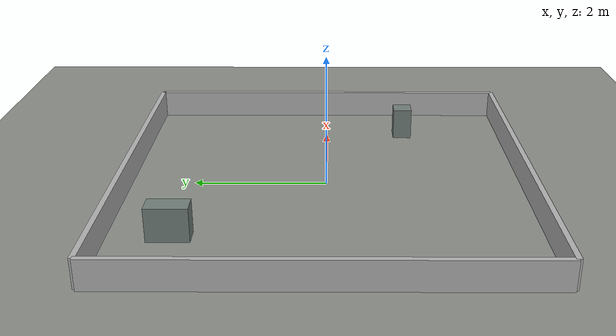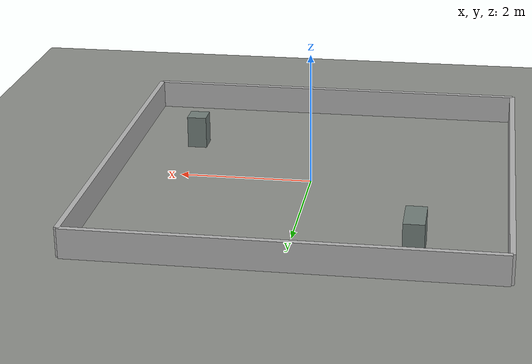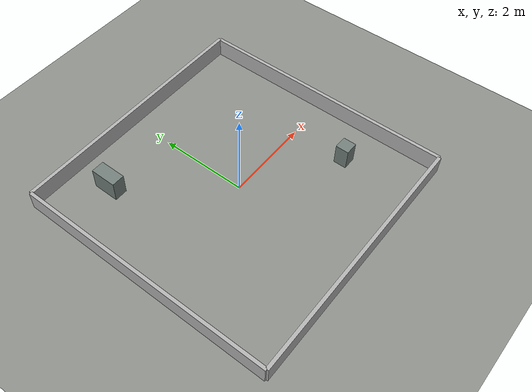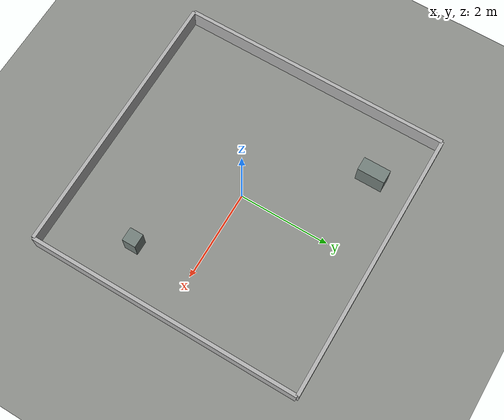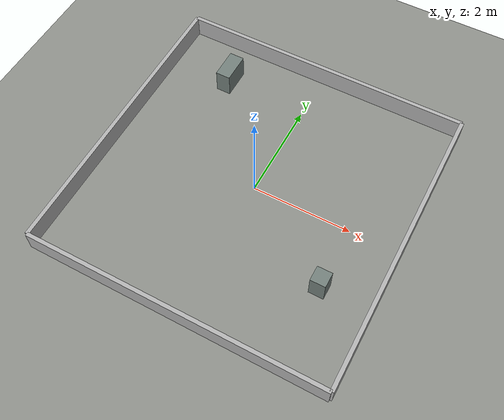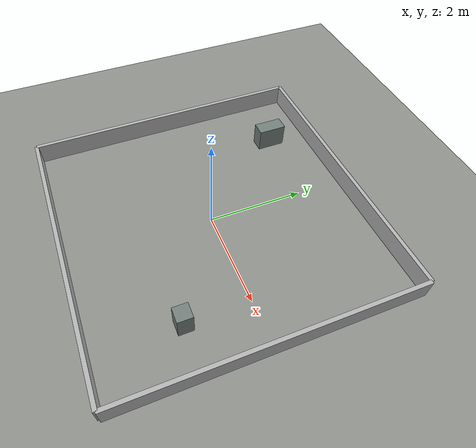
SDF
<?xml version="1.0" ?>
<sdf version="1.8">
  <world name="rosy_swarm_bench">
    <physics name="1ms" type="ignored">
      <max_step_size>0.001</max_step_size>
      <real_time_factor>1.0</real_time_factor>
    </physics>

    <plugin
      filename="gz-sim-physics-system"
      name="gz::sim::systems::Physics">
    </plugin>
    <plugin
      filename="gz-sim-sensors-system"
      name="gz::sim::systems::Sensors">
      <render_engine>ogre2</render_engine>
    </plugin>
    <plugin
      filename="gz-sim-user-commands-system"
      name="gz::sim::systems::UserCommands">
    </plugin>
    <plugin
      filename="gz-sim-scene-broadcaster-system"
      name="gz::sim::systems::SceneBroadcaster">
    </plugin>
    <plugin filename="gz-sim-imu-system"
        name="gz::sim::systems::Imu">
    </plugin>

    <light type="directional" name="sun">
      <cast_shadows>false</cast_shadows>
      <pose>0 0 3 0 0 0</pose>
      <diffuse>1 1 1 1</diffuse>
      <specular>1 1 1 1</specular>
      <attenuation>
        <range>1000</range>
        <constant>1</constant>
        <linear>0</linear>
        <quadratic>0</quadratic>
      </attenuation>
      <direction>0 0 -1</direction>
    </light>

    <model name="ground_plane">
      <static>true</static>
      <link name="ground_link">
        <collision name="ground_collision">
          <geometry>
            <plane>
              <normal>0 0 1</normal>
              <size>12 12</size>
            </plane>
          </geometry>
        </collision>
        <visual name="ground_visual">
          <geometry>
            <plane>
              <normal>0 0 1</normal>
              <size>12 12</size>
            </plane>
          </geometry>
          <material>
            <diffuse>0.55 0.56 0.54 1</diffuse>
            <specular>0.1 0.1 0.1 1</specular>
          </material>
        </visual>
      </link>
    </model>

    <model name="wall_front">
      <static>true</static>
      <pose>0 3 0.22 0 0 0</pose>
      <link name="wall_link_front">
        <visual name="wall_visual_front">
          <geometry><box><size>6 0.08 0.44</size></box></geometry>
          <material>
            <diffuse>0.7 0.7 0.7 1</diffuse>
            <specular>0.2 0.2 0.2 1</specular>
          </material>
        </visual>
        <collision name="wall_collision_front">
          <geometry><box><size>6 0.08 0.44</size></box></geometry>
        </collision>
      </link>
    </model>

    <model name="wall_back">
      <static>true</static>
      <pose>0 -3 0.22 0 0 0</pose>
      <link name="wall_link_back">
        <visual name="wall_visual_back">
          <geometry><box><size>6 0.08 0.44</size></box></geometry>
          <material>
            <diffuse>0.7 0.7 0.7 1</diffuse>
            <specular>0.2 0.2 0.2 1</specular>
          </material>
        </visual>
        <collision name="wall_collision_back">
          <geometry><box><size>6 0.08 0.44</size></box></geometry>
        </collision>
      </link>
    </model>

    <model name="wall_left">
      <static>true</static>
      <pose>-3 0 0.22 0 0 1.5708</pose>
      <link name="wall_link_left">
        <visual name="wall_visual_left">
          <geometry><box><size>6 0.08 0.44</size></box></geometry>
          <material>
            <diffuse>0.7 0.7 0.7 1</diffuse>
            <specular>0.2 0.2 0.2 1</specular>
          </material>
        </visual>
        <collision name="wall_collision_left">
          <geometry><box><size>6 0.08 0.44</size></box></geometry>
        </collision>
      </link>
    </model>

    <model name="wall_right">
      <static>true</static>
      <pose>3 0 0.22 0 0 1.5708</pose>
      <link name="wall_link_right">
        <visual name="wall_visual_right">
          <geometry><box><size>6 0.08 0.44</size></box></geometry>
          <material>
            <diffuse>0.7 0.7 0.7 1</diffuse>
            <specular>0.2 0.2 0.2 1</specular>
          </material>
        </visual>
        <collision name="wall_collision_right">
          <geometry><box><size>6 0.08 0.44</size></box></geometry>
        </collision>
      </link>
    </model>

    <!-- 대칭을 깨는 기둥 둘. 빈 정사각 방은 90도씩 돌려도 스캔이 같아서 AMCL 이
         엉뚱한 사분면에 수렴할 수 있다. 대형이 도는 가운데 고리는 비워 둔다. -->
    <model name="pillar_a">
      <static>true</static>
      <pose>2.0 -1.3 0.25 0 0 0</pose>
      <link name="pillar_a_link">
        <visual name="pillar_a_visual">
          <geometry><box><size>0.3 0.3 0.5</size></box></geometry>
          <material>
            <diffuse>0.45 0.5 0.48 1</diffuse>
            <specular>0.2 0.2 0.2 1</specular>
          </material>
        </visual>
        <collision name="pillar_a_collision">
          <geometry><box><size>0.3 0.3 0.5</size></box></geometry>
        </collision>
      </link>
    </model>

    <model name="pillar_b">
      <static>true</static>
      <pose>-1.7 2.1 0.25 0 0 0</pose>
      <link name="pillar_b_link">
        <visual name="pillar_b_visual">
          <geometry><box><size>0.3 0.6 0.5</size></box></geometry>
          <material>
            <diffuse>0.45 0.5 0.48 1</diffuse>
            <specular>0.2 0.2 0.2 1</specular>
          </material>
        </visual>
        <collision name="pillar_b_collision">
          <geometry><box><size>0.3 0.6 0.5</size></box></geometry>
        </collision>
      </link>
    </model>

  </world>
</sdf>
